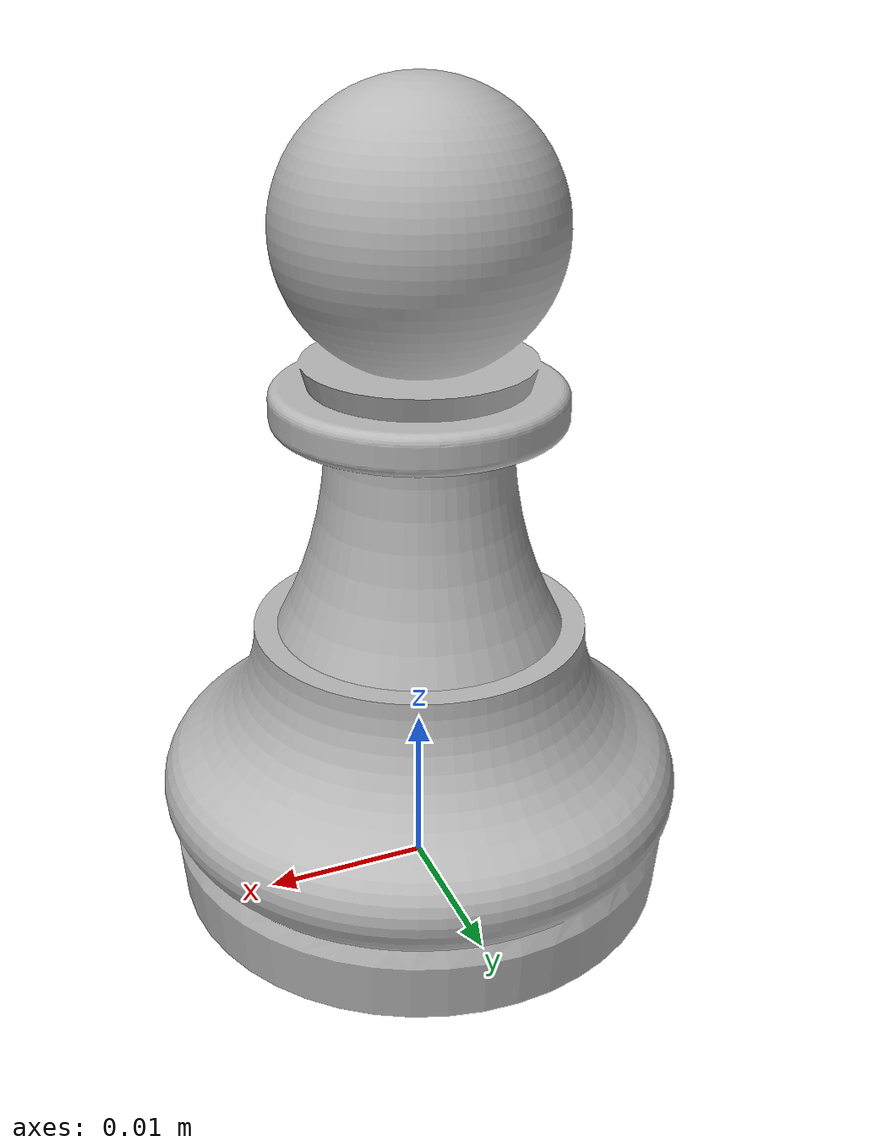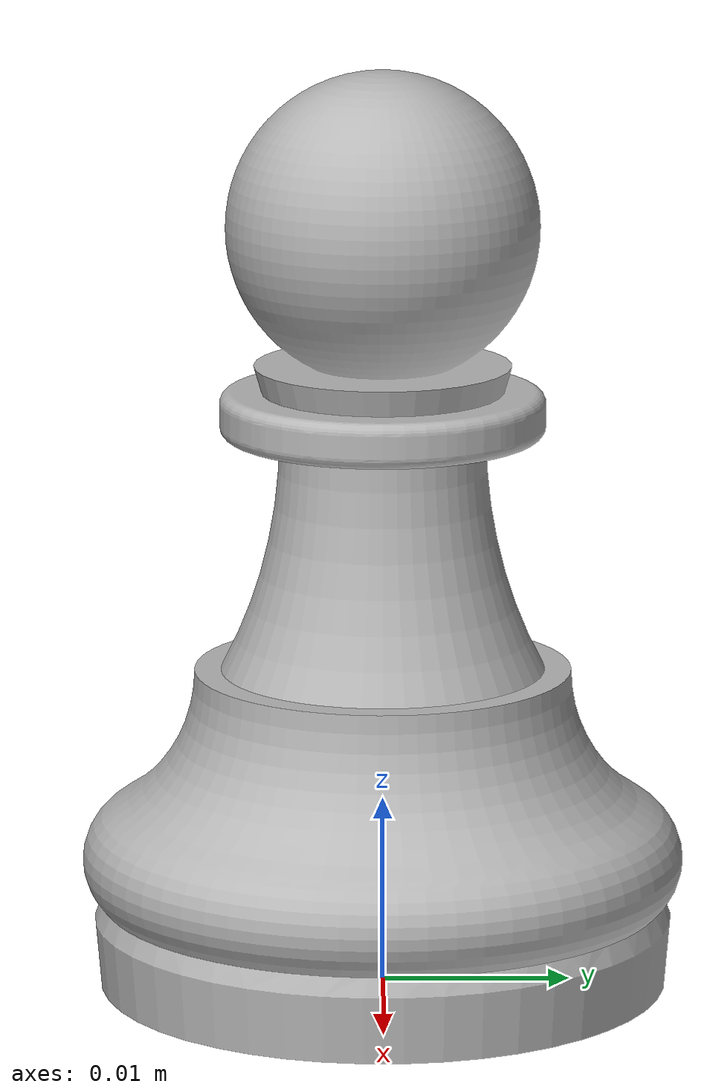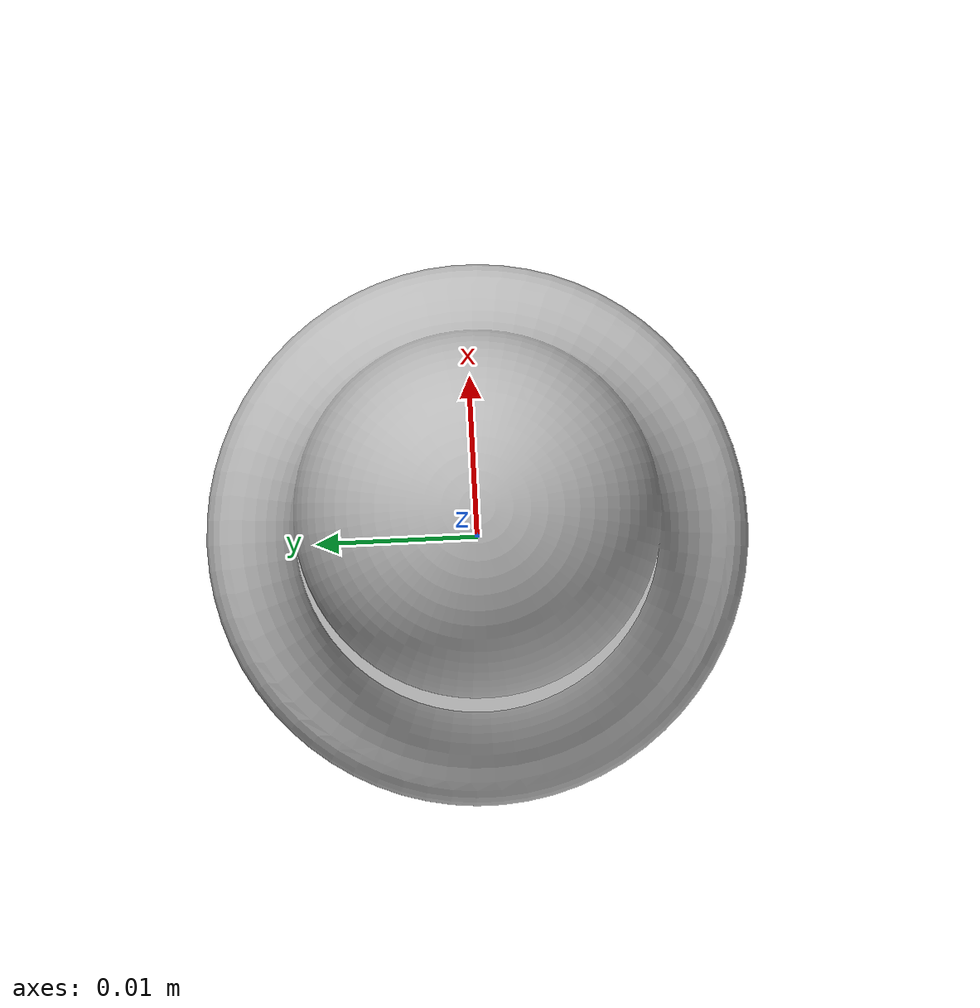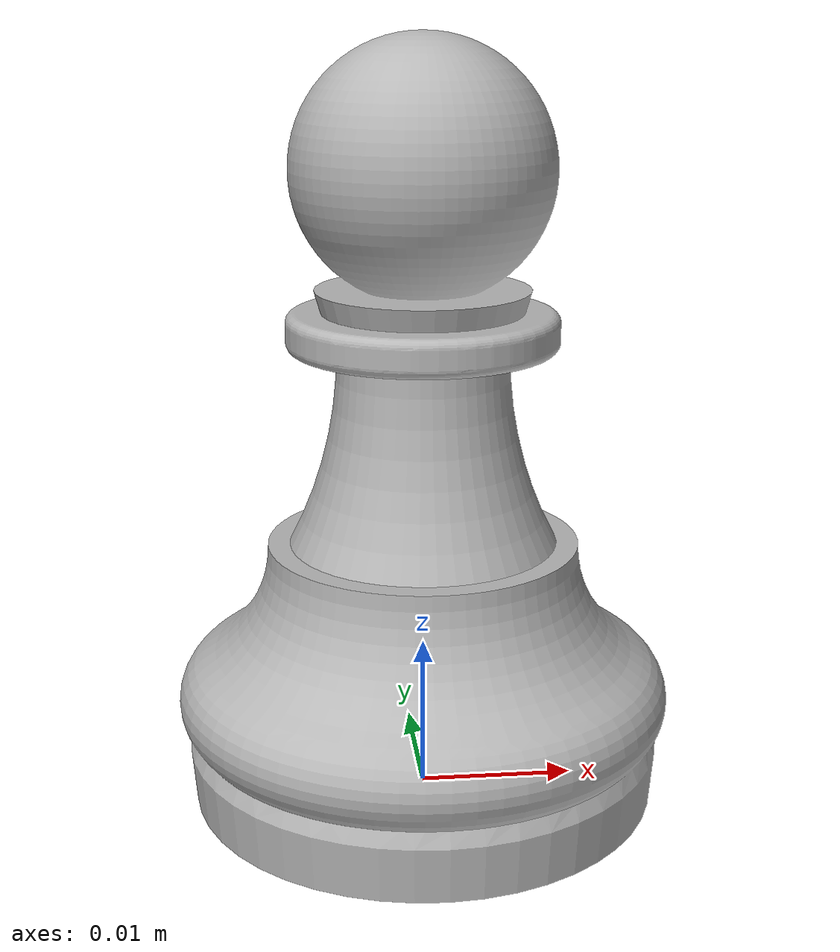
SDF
<?xml version='1.0'?>
<sdf version='1.6'>
  <model name='pawn_white'>
    <static>0</static>
    <link name='link_0'>
      <inertial>
        <mass>0.01</mass>
        <inertia>
          <ixx>0.000001</ixx>
          <ixy>0</ixy>
          <ixz>0</ixz>
          <iyy>0.000001</iyy>
          <iyz>0</iyz>
          <izz>0.0000005</izz>
        </inertia>
        <pose frame=''>0 0 0 0 0 0</pose>
      </inertial>
      <gravity>1</gravity>
      <self_collide>0</self_collide>
      <kinematic>1</kinematic>
      <enable_wind>0</enable_wind>
      <visual name='visual'>
        <pose frame=''>0 0 0 0 0 0</pose>
        <geometry>
          <mesh>
            <uri>meshes/pawn.dae</uri>
            <scale>2 2 2</scale>
          </mesh>
        </geometry>

        <transparency>0</transparency>
        <cast_shadows>1</cast_shadows>
      </visual>
      <collision name='collision'>
        <laser_retro>0</laser_retro>
        <max_contacts>10</max_contacts>
        <pose frame=''>0 0 0.015 0 0 0</pose>
        <geometry>
          <cylinder>
            <radius>0.01</radius>
            <length>0.03</length>
          </cylinder>
        </geometry>
        <surface>
          <friction>
            <ode>
              <mu>1</mu>
              <mu2>1</mu2>
            </ode>
          </friction>
          <contact>
            <ode>
              <kp>1e+07</kp>
              <kd>1</kd>
              <max_vel>0.001</max_vel>
              <min_depth>0.1</min_depth>
            </ode>
          </contact>
        </surface>
      </collision>
    </link>
  </model>
</sdf>
